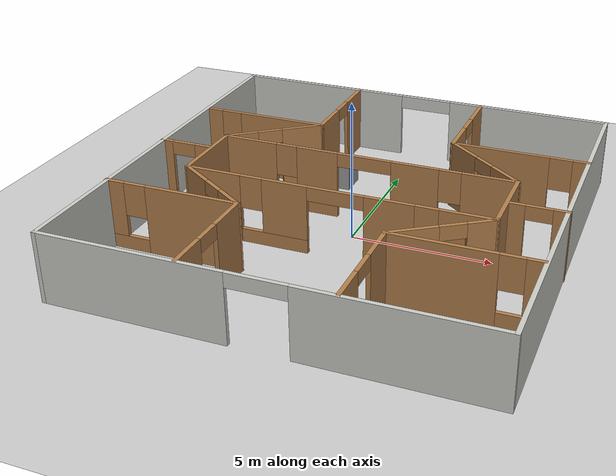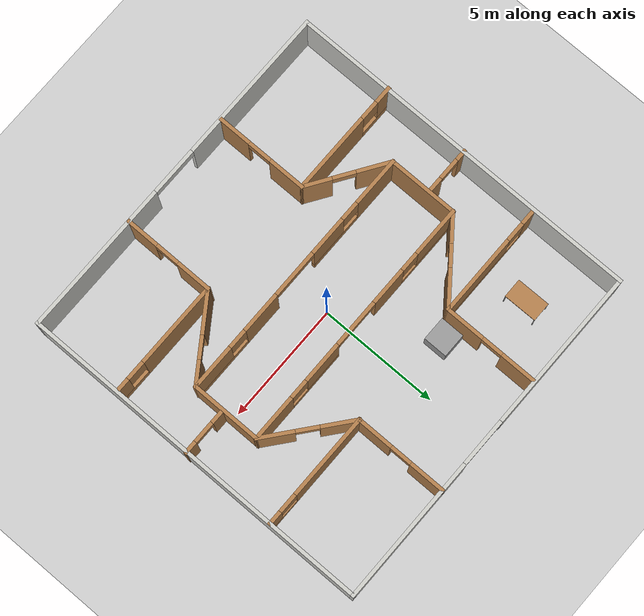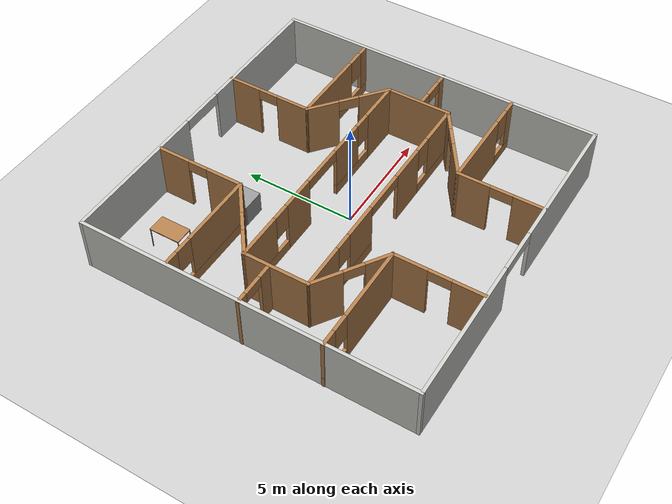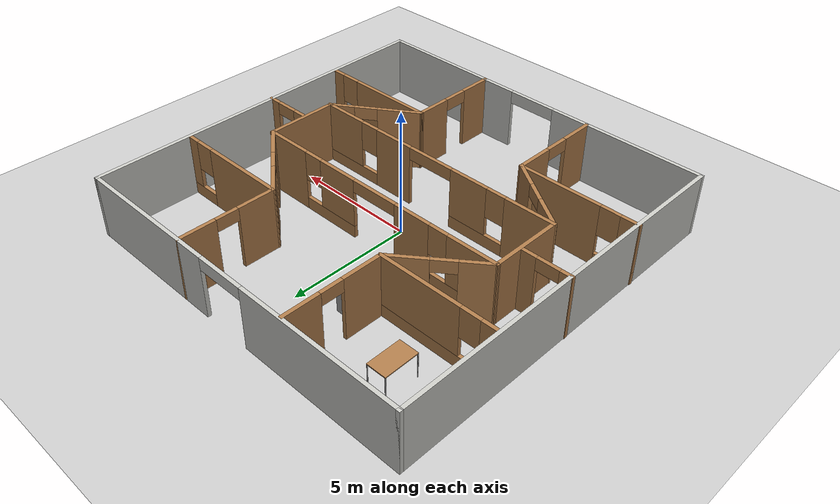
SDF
<sdf version="1.6">
 <world name="default">
  <model name="ground_plane">
   <static>1</static>
   <link name="link">
    <collision name="collision">
     <geometry><plane><normal>0 0 1</normal><size>100 100</size></plane></geometry>
     <surface><friction><ode><mu>100</mu><mu2>50</mu2></ode></friction></surface>
    </collision>
    <visual name="visual">
     <cast_shadows>0</cast_shadows>
     <geometry><plane><normal>0 0 1</normal><size>100 100</size></plane></geometry>
     <material>
      <script><uri>file://media/materials/scripts/gazebo.material</uri><name>Gazebo/Grey</name></script>
     </material>
    </visual>
   </link>
  </model>
  <model name="my_building">
   <pose>-0.03251 0.10057 0 0 -0 0</pose>
   <link name="Wall_106">
    <pose>-4.91785 3.41483 0 0 -0 0</pose>
    <visual name="Wall_106_Visual_0">
     <pose>-2.11085 0 1.25 0 -0 0</pose>
     <geometry><box><size>0.628291 0.15 2.5</size></box></geometry>
     <material>
      <script><uri>file://media/materials/scripts/gazebo.material</uri><name>Gazebo/Wood</name></script>
      <ambient>0.996078 0.47451 0.0196078 1</ambient>
     </material>
    </visual>
    <collision name="Wall_106_Collision_0">
     <geometry><box><size>0.628291 0.15 2.5</size></box></geometry>
     <pose>-2.11085 0 1.25 0 -0 0</pose>
    </collision>
    <visual name="Wall_106_Visual_1">
     <pose>0.314146 0 0.25 0 -0 0</pose>
     <geometry><box><size>4.22171 0.15 0.5</size></box></geometry>
     <material>
      <script><uri>file://media/materials/scripts/gazebo.material</uri><name>Gazebo/Wood</name></script>
      <ambient>0.996078 0.47451 0.0196078 1</ambient>
     </material>
    </visual>
    <collision name="Wall_106_Collision_1">
     <geometry><box><size>4.22171 0.15 0.5</size></box></geometry>
     <pose>0.314146 0 0.25 0 -0 0</pose>
    </collision>
    <visual name="Wall_106_Visual_2">
     <pose>0.714146 0 1.5 0 -0 0</pose>
     <geometry><box><size>3.42171 0.15 2</size></box></geometry>
     <material>
      <script><uri>file://media/materials/scripts/gazebo.material</uri><name>Gazebo/Wood</name></script>
      <ambient>0.996078 0.47451 0.0196078 1</ambient>
     </material>
    </visual>
    <collision name="Wall_106_Collision_2">
     <geometry><box><size>3.42171 0.15 2</size></box></geometry>
     <pose>0.714146 0 1.5 0 -0 0</pose>
    </collision>
    <visual name="Wall_106_Visual_3">
     <pose>-1.39671 0 1.9 0 -0 0</pose>
     <geometry><box><size>0.8 0.15 1.2</size></box></geometry>
     <material>
      <script><uri>file://media/materials/scripts/gazebo.material</uri><name>Gazebo/Wood</name></script>
      <ambient>0.996078 0.47451 0.0196078 1</ambient>
     </material>
    </visual>
    <collision name="Wall_106_Collision_3">
     <geometry><box><size>0.8 0.15 1.2</size></box></geometry>
     <pose>-1.39671 0 1.9 0 -0 0</pose>
    </collision>
   </link>
   <link name="Wall_110">
    <pose>-4.98829 -3.52523 0 0 -0 3.14159</pose>
    <visual name="Wall_110_Visual_0">
     <pose>-0.776842 0 1.25 0 -0 0</pose>
     <geometry><box><size>3.44632 0.15 2.5</size></box></geometry>
     <material>
      <script><uri>file://media/materials/scripts/gazebo.material</uri><name>Gazebo/Wood</name></script>
      <ambient>0.996078 0.47451 0.0196078 1</ambient>
     </material>
    </visual>
    <collision name="Wall_110_Collision_0">
     <geometry><box><size>3.44632 0.15 2.5</size></box></geometry>
     <pose>-0.776842 0 1.25 0 -0 0</pose>
    </collision>
    <visual name="Wall_110_Visual_1">
     <pose>1.72316 0 0.25 0 -0 0</pose>
     <geometry><box><size>1.55368 0.15 0.5</size></box></geometry>
     <material>
      <script><uri>file://media/materials/scripts/gazebo.material</uri><name>Gazebo/Wood</name></script>
      <ambient>0.996078 0.47451 0.0196078 1</ambient>
     </material>
    </visual>
    <collision name="Wall_110_Collision_1">
     <geometry><box><size>1.55368 0.15 0.5</size></box></geometry>
     <pose>1.72316 0 0.25 0 -0 0</pose>
    </collision>
    <visual name="Wall_110_Visual_2">
     <pose>2.12316 0 1.5 0 -0 0</pose>
     <geometry><box><size>0.753684 0.15 2</size></box></geometry>
     <material>
      <script><uri>file://media/materials/scripts/gazebo.material</uri><name>Gazebo/Wood</name></script>
      <ambient>0.996078 0.47451 0.0196078 1</ambient>
     </material>
    </visual>
    <collision name="Wall_110_Collision_2">
     <geometry><box><size>0.753684 0.15 2</size></box></geometry>
     <pose>2.12316 0 1.5 0 -0 0</pose>
    </collision>
    <visual name="Wall_110_Visual_3">
     <pose>1.34632 0 1.9 0 -0 0</pose>
     <geometry><box><size>0.8 0.15 1.2</size></box></geometry>
     <material>
      <script><uri>file://media/materials/scripts/gazebo.material</uri><name>Gazebo/Wood</name></script>
      <ambient>0.996078 0.47451 0.0196078 1</ambient>
     </material>
    </visual>
    <collision name="Wall_110_Collision_3">
     <geometry><box><size>0.8 0.15 1.2</size></box></geometry>
     <pose>1.34632 0 1.9 0 -0 0</pose>
    </collision>
   </link>
   <link name="Wall_112">
    <pose>4.89491 -3.63421 0 0 0 -1.6e-05</pose>
    <visual name="Wall_112_Visual_0">
     <pose>-0.698891 0 1.25 0 -0 0</pose>
     <geometry><box><size>3.60222 0.15 2.5</size></box></geometry>
     <material>
      <script><uri>file://media/materials/scripts/gazebo.material</uri><name>Gazebo/Wood</name></script>
      <ambient>0.996078 0.47451 0.0196078 1</ambient>
     </material>
    </visual>
    <collision name="Wall_112_Collision_0">
     <geometry><box><size>3.60222 0.15 2.5</size></box></geometry>
     <pose>-0.698891 0 1.25 0 -0 0</pose>
    </collision>
    <visual name="Wall_112_Visual_1">
     <pose>1.80111 0 0.25 0 -0 0</pose>
     <geometry><box><size>1.39778 0.15 0.5</size></box></geometry>
     <material>
      <script><uri>file://media/materials/scripts/gazebo.material</uri><name>Gazebo/Wood</name></script>
      <ambient>0.996078 0.47451 0.0196078 1</ambient>
     </material>
    </visual>
    <collision name="Wall_112_Collision_1">
     <geometry><box><size>1.39778 0.15 0.5</size></box></geometry>
     <pose>1.80111 0 0.25 0 -0 0</pose>
    </collision>
    <visual name="Wall_112_Visual_2">
     <pose>2.20111 0 1.5 0 -0 0</pose>
     <geometry><box><size>0.597783 0.15 2</size></box></geometry>
     <material>
      <script><uri>file://media/materials/scripts/gazebo.material</uri><name>Gazebo/Wood</name></script>
      <ambient>0.996078 0.47451 0.0196078 1</ambient>
     </material>
    </visual>
    <collision name="Wall_112_Collision_2">
     <geometry><box><size>0.597783 0.15 2</size></box></geometry>
     <pose>2.20111 0 1.5 0 -0 0</pose>
    </collision>
    <visual name="Wall_112_Visual_3">
     <pose>1.50222 0 1.9 0 -0 0</pose>
     <geometry><box><size>0.8 0.15 1.2</size></box></geometry>
     <material>
      <script><uri>file://media/materials/scripts/gazebo.material</uri><name>Gazebo/Wood</name></script>
      <ambient>0.996078 0.47451 0.0196078 1</ambient>
     </material>
    </visual>
    <collision name="Wall_112_Collision_3">
     <geometry><box><size>0.8 0.15 1.2</size></box></geometry>
     <pose>1.50222 0 1.9 0 -0 0</pose>
    </collision>
   </link>
   <link name="Wall_121">
    <pose>-6.47923 0.092939 0 0 -0 0</pose>
    <visual name="Wall_121_Visual_0">
     <pose>-0.75294 0 1.25 0 -0 0</pose>
     <geometry><box><size>0.494121 0.15 2.5</size></box></geometry>
     <material>
      <script><uri>file://media/materials/scripts/gazebo.material</uri><name>Gazebo/Wood</name></script>
      <ambient>1 1 0 1</ambient>
     </material>
    </visual>
    <collision name="Wall_121_Collision_0">
     <geometry><box><size>0.494121 0.15 2.5</size></box></geometry>
     <pose>-0.75294 0 1.25 0 -0 0</pose>
    </collision>
    <visual name="Wall_121_Visual_1">
     <pose>0.69706 0 1.25 0 -0 0</pose>
     <geometry><box><size>0.605879 0.15 2.5</size></box></geometry>
     <material>
      <script><uri>file://media/materials/scripts/gazebo.material</uri><name>Gazebo/Wood</name></script>
      <ambient>1 1 0 1</ambient>
     </material>
    </visual>
    <collision name="Wall_121_Collision_1">
     <geometry><box><size>0.605879 0.15 2.5</size></box></geometry>
     <pose>0.69706 0 1.25 0 -0 0</pose>
    </collision>
    <visual name="Wall_121_Visual_2">
     <pose>-0.055879 0 2.25 0 -0 0</pose>
     <geometry><box><size>0.9 0.15 0.5</size></box></geometry>
     <material>
      <script><uri>file://media/materials/scripts/gazebo.material</uri><name>Gazebo/Wood</name></script>
      <ambient>1 1 0 1</ambient>
     </material>
    </visual>
    <collision name="Wall_121_Collision_2">
     <geometry><box><size>0.9 0.15 0.5</size></box></geometry>
     <pose>-0.055879 0 2.25 0 -0 0</pose>
    </collision>
   </link>
   <link name="Wall_127">
    <pose>6.48829 -0.329162 0 0 -0 3.14159</pose>
    <visual name="Wall_127_Visual_0">
     <pose>-0.719515 0 1.25 0 -0 0</pose>
     <geometry><box><size>0.56097 0.15 2.5</size></box></geometry>
     <material>
      <script><uri>file://media/materials/scripts/gazebo.material</uri><name>Gazebo/Wood</name></script>
      <ambient>1 1 0 1</ambient>
     </material>
    </visual>
    <collision name="Wall_127_Collision_0">
     <geometry><box><size>0.56097 0.15 2.5</size></box></geometry>
     <pose>-0.719515 0 1.25 0 -0 0</pose>
    </collision>
    <visual name="Wall_127_Visual_1">
     <pose>0.730485 0 1.25 0 -0 0</pose>
     <geometry><box><size>0.53903 0.15 2.5</size></box></geometry>
     <material>
      <script><uri>file://media/materials/scripts/gazebo.material</uri><name>Gazebo/Wood</name></script>
      <ambient>1 1 0 1</ambient>
     </material>
    </visual>
    <collision name="Wall_127_Collision_1">
     <geometry><box><size>0.53903 0.15 2.5</size></box></geometry>
     <pose>0.730485 0 1.25 0 -0 0</pose>
    </collision>
    <visual name="Wall_127_Visual_2">
     <pose>0.01097 0 2.25 0 -0 0</pose>
     <geometry><box><size>0.9 0.15 0.5</size></box></geometry>
     <material>
      <script><uri>file://media/materials/scripts/gazebo.material</uri><name>Gazebo/Wood</name></script>
      <ambient>1 1 0 1</ambient>
     </material>
    </visual>
    <collision name="Wall_127_Collision_2">
     <geometry><box><size>0.9 0.15 0.5</size></box></geometry>
     <pose>0.01097 0 2.25 0 -0 0</pose>
    </collision>
   </link>
   <link name="Wall_131">
    <collision name="Wall_131_Collision">
     <geometry><box><size>3 0.15 2.5</size></box></geometry>
     <pose>0 0 1.25 0 -0 0</pose>
    </collision>
    <visual name="Wall_131_Visual">
     <pose>0 0 1.25 0 -0 0</pose>
     <geometry><box><size>3 0.15 2.5</size></box></geometry>
     <material>
      <script><uri>file://media/materials/scripts/gazebo.material</uri><name>Gazebo/Wood</name></script>
      <ambient>0.333333 1 0 1</ambient>
     </material>
    </visual>
    <pose>-5.42447 -0.198993 0 0 0 -1.5708</pose>
   </link>
   <link name="Wall_132">
    <pose>0.000529 -1.62399 0 0 -0 0</pose>
    <visual name="Wall_132_Visual_0">
     <pose>-4.45342 0 1.25 0 -0 0</pose>
     <geometry><box><size>2.09316 0.15 2.5</size></box></geometry>
     <material>
      <script><uri>file://media/materials/scripts/gazebo.material</uri><name>Gazebo/Wood</name></script>
      <ambient>0.333333 1 0 1</ambient>
     </material>
    </visual>
    <collision name="Wall_132_Collision_0">
     <geometry><box><size>2.09316 0.15 2.5</size></box></geometry>
     <pose>-4.45342 0 1.25 0 -0 0</pose>
    </collision>
    <visual name="Wall_132_Visual_1">
     <pose>1.90465 0 1.25 0 -0 0</pose>
     <geometry><box><size>1.7278 0.15 2.5</size></box></geometry>
     <material>
      <script><uri>file://media/materials/scripts/gazebo.material</uri><name>Gazebo/Wood</name></script>
      <ambient>0.333333 1 0 1</ambient>
     </material>
    </visual>
    <collision name="Wall_132_Collision_1">
     <geometry><box><size>1.7278 0.15 2.5</size></box></geometry>
     <pose>1.90465 0 1.25 0 -0 0</pose>
    </collision>
    <visual name="Wall_132_Visual_2">
     <pose>-2.18304 0 0.25 0 -0 0</pose>
     <geometry><box><size>2.4476 0.15 0.5</size></box></geometry>
     <material>
      <script><uri>file://media/materials/scripts/gazebo.material</uri><name>Gazebo/Wood</name></script>
      <ambient>0.333333 1 0 1</ambient>
     </material>
    </visual>
    <collision name="Wall_132_Collision_2">
     <geometry><box><size>2.4476 0.15 0.5</size></box></geometry>
     <pose>-2.18304 0 0.25 0 -0 0</pose>
    </collision>
    <visual name="Wall_132_Visual_3">
     <pose>4.13427 0 0.25 0 -0 0</pose>
     <geometry><box><size>2.73145 0.15 0.5</size></box></geometry>
     <material>
      <script><uri>file://media/materials/scripts/gazebo.material</uri><name>Gazebo/Wood</name></script>
      <ambient>0.333333 1 0 1</ambient>
     </material>
    </visual>
    <collision name="Wall_132_Collision_3">
     <geometry><box><size>2.73145 0.15 0.5</size></box></geometry>
     <pose>4.13427 0 0.25 0 -0 0</pose>
    </collision>
    <visual name="Wall_132_Visual_4">
     <pose>-1.78304 0 1.5 0 -0 0</pose>
     <geometry><box><size>1.6476 0.15 2</size></box></geometry>
     <material>
      <script><uri>file://media/materials/scripts/gazebo.material</uri><name>Gazebo/Wood</name></script>
      <ambient>0.333333 1 0 1</ambient>
     </material>
    </visual>
    <collision name="Wall_132_Collision_4">
     <geometry><box><size>1.6476 0.15 2</size></box></geometry>
     <pose>-1.78304 0 1.5 0 -0 0</pose>
    </collision>
    <visual name="Wall_132_Visual_5">
     <pose>-1.78304 0 1.5 0 -0 0</pose>
     <geometry><box><size>1.6476 0.15 2</size></box></geometry>
     <material>
      <script><uri>file://media/materials/scripts/gazebo.material</uri><name>Gazebo/Wood</name></script>
      <ambient>0.333333 1 0 1</ambient>
     </material>
    </visual>
    <collision name="Wall_132_Collision_5">
     <geometry><box><size>1.6476 0.15 2</size></box></geometry>
     <pose>-1.78304 0 1.5 0 -0 0</pose>
    </collision>
    <visual name="Wall_132_Visual_6">
     <pose>4.53428 0 1.5 0 -0 0</pose>
     <geometry><box><size>1.93145 0.15 2</size></box></geometry>
     <material>
      <script><uri>file://media/materials/scripts/gazebo.material</uri><name>Gazebo/Wood</name></script>
      <ambient>0.333333 1 0 1</ambient>
     </material>
    </visual>
    <collision name="Wall_132_Collision_6">
     <geometry><box><size>1.93145 0.15 2</size></box></geometry>
     <pose>4.53428 0 1.5 0 -0 0</pose>
    </collision>
    <visual name="Wall_132_Visual_7">
     <pose>-3.00684 0 1.9 0 -0 0</pose>
     <geometry><box><size>0.8 0.15 1.2</size></box></geometry>
     <material>
      <script><uri>file://media/materials/scripts/gazebo.material</uri><name>Gazebo/Wood</name></script>
      <ambient>0.333333 1 0 1</ambient>
     </material>
    </visual>
    <collision name="Wall_132_Collision_7">
     <geometry><box><size>0.8 0.15 1.2</size></box></geometry>
     <pose>-3.00684 0 1.9 0 -0 0</pose>
    </collision>
    <visual name="Wall_132_Visual_8">
     <pose>3.16855 0 1.9 0 -0 0</pose>
     <geometry><box><size>0.8 0.15 1.2</size></box></geometry>
     <material>
      <script><uri>file://media/materials/scripts/gazebo.material</uri><name>Gazebo/Wood</name></script>
      <ambient>0.333333 1 0 1</ambient>
     </material>
    </visual>
    <collision name="Wall_132_Collision_8">
     <geometry><box><size>0.8 0.15 1.2</size></box></geometry>
     <pose>3.16855 0 1.9 0 -0 0</pose>
    </collision>
    <visual name="Wall_132_Visual_9">
     <pose>0.040754 0 2.25 0 -0 0</pose>
     <geometry><box><size>2 0.15 0.5</size></box></geometry>
     <material>
      <script><uri>file://media/materials/scripts/gazebo.material</uri><name>Gazebo/Wood</name></script>
      <ambient>0.333333 1 0 1</ambient>
     </material>
    </visual>
    <collision name="Wall_132_Collision_9">
     <geometry><box><size>2 0.15 0.5</size></box></geometry>
     <pose>0.040754 0 2.25 0 -0 0</pose>
    </collision>
    <visual name="Wall_132_Visual_10">
     <pose>0.040754 0 2.25 0 -0 0</pose>
     <geometry><box><size>2 0.15 0.5</size></box></geometry>
     <material>
      <script><uri>file://media/materials/scripts/gazebo.material</uri><name>Gazebo/Wood</name></script>
      <ambient>0.333333 1 0 1</ambient>
     </material>
    </visual>
    <collision name="Wall_132_Collision_10">
     <geometry><box><size>2 0.15 0.5</size></box></geometry>
     <pose>0.040754 0 2.25 0 -0 0</pose>
    </collision>
   </link>
   <link name="Wall_133">
    <collision name="Wall_133_Collision">
     <geometry><box><size>3 0.15 2.5</size></box></geometry>
     <pose>0 0 1.25 0 -0 0</pose>
    </collision>
    <visual name="Wall_133_Visual">
     <pose>0 0 1.25 0 -0 0</pose>
     <geometry><box><size>3 0.15 2.5</size></box></geometry>
     <material>
      <script><uri>file://media/materials/scripts/gazebo.material</uri><name>Gazebo/Wood</name></script>
      <ambient>0.333333 1 0 1</ambient>
     </material>
    </visual>
    <pose>5.42553 -0.198993 0 0 -0 1.5708</pose>
   </link>
   <link name="Wall_134">
    <pose>0.000529 1.22601 0 0 -0 3.14159</pose>
    <visual name="Wall_134_Visual_0">
     <pose>-4.5042 0 1.25 0 -0 0</pose>
     <geometry><box><size>1.9916 0.15 2.5</size></box></geometry>
     <material>
      <script><uri>file://media/materials/scripts/gazebo.material</uri><name>Gazebo/Wood</name></script>
      <ambient>0.333333 1 0 1</ambient>
     </material>
    </visual>
    <collision name="Wall_134_Collision_0">
     <geometry><box><size>1.9916 0.15 2.5</size></box></geometry>
     <pose>-4.5042 0 1.25 0 -0 0</pose>
    </collision>
    <visual name="Wall_134_Visual_1">
     <pose>1.80309 0 1.25 0 -0 0</pose>
     <geometry><box><size>1.5674 0.15 2.5</size></box></geometry>
     <material>
      <script><uri>file://media/materials/scripts/gazebo.material</uri><name>Gazebo/Wood</name></script>
      <ambient>0.333333 1 0 1</ambient>
     </material>
    </visual>
    <collision name="Wall_134_Collision_1">
     <geometry><box><size>1.5674 0.15 2.5</size></box></geometry>
     <pose>1.80309 0 1.25 0 -0 0</pose>
    </collision>
    <visual name="Wall_134_Visual_2">
     <pose>-2.2445 0 0.25 0 -0 0</pose>
     <geometry><box><size>2.5278 0.15 0.5</size></box></geometry>
     <material>
      <script><uri>file://media/materials/scripts/gazebo.material</uri><name>Gazebo/Wood</name></script>
      <ambient>0.333333 1 0 1</ambient>
     </material>
    </visual>
    <collision name="Wall_134_Collision_2">
     <geometry><box><size>2.5278 0.15 0.5</size></box></geometry>
     <pose>-2.2445 0 0.25 0 -0 0</pose>
    </collision>
    <visual name="Wall_134_Visual_3">
     <pose>4.0434 0 0.25 0 -0 0</pose>
     <geometry><box><size>2.91321 0.15 0.5</size></box></geometry>
     <material>
      <script><uri>file://media/materials/scripts/gazebo.material</uri><name>Gazebo/Wood</name></script>
      <ambient>0.333333 1 0 1</ambient>
     </material>
    </visual>
    <collision name="Wall_134_Collision_3">
     <geometry><box><size>2.91321 0.15 0.5</size></box></geometry>
     <pose>4.0434 0 0.25 0 -0 0</pose>
    </collision>
    <visual name="Wall_134_Visual_4">
     <pose>-1.8445 0 1.5 0 -0 0</pose>
     <geometry><box><size>1.7278 0.15 2</size></box></geometry>
     <material>
      <script><uri>file://media/materials/scripts/gazebo.material</uri><name>Gazebo/Wood</name></script>
      <ambient>0.333333 1 0 1</ambient>
     </material>
    </visual>
    <collision name="Wall_134_Collision_4">
     <geometry><box><size>1.7278 0.15 2</size></box></geometry>
     <pose>-1.8445 0 1.5 0 -0 0</pose>
    </collision>
    <visual name="Wall_134_Visual_5">
     <pose>-1.8445 0 1.5 0 -0 0</pose>
     <geometry><box><size>1.7278 0.15 2</size></box></geometry>
     <material>
      <script><uri>file://media/materials/scripts/gazebo.material</uri><name>Gazebo/Wood</name></script>
      <ambient>0.333333 1 0 1</ambient>
     </material>
    </visual>
    <collision name="Wall_134_Collision_5">
     <geometry><box><size>1.7278 0.15 2</size></box></geometry>
     <pose>-1.8445 0 1.5 0 -0 0</pose>
    </collision>
    <visual name="Wall_134_Visual_6">
     <pose>4.4434 0 1.5 0 -0 0</pose>
     <geometry><box><size>2.11321 0.15 2</size></box></geometry>
     <material>
      <script><uri>file://media/materials/scripts/gazebo.material</uri><name>Gazebo/Wood</name></script>
      <ambient>0.333333 1 0 1</ambient>
     </material>
    </visual>
    <collision name="Wall_134_Collision_6">
     <geometry><box><size>2.11321 0.15 2</size></box></geometry>
     <pose>4.4434 0 1.5 0 -0 0</pose>
    </collision>
    <visual name="Wall_134_Visual_7">
     <pose>-3.1084 0 1.9 0 -0 0</pose>
     <geometry><box><size>0.8 0.15 1.2</size></box></geometry>
     <material>
      <script><uri>file://media/materials/scripts/gazebo.material</uri><name>Gazebo/Wood</name></script>
      <ambient>0.333333 1 0 1</ambient>
     </material>
    </visual>
    <collision name="Wall_134_Collision_7">
     <geometry><box><size>0.8 0.15 1.2</size></box></geometry>
     <pose>-3.1084 0 1.9 0 -0 0</pose>
    </collision>
    <visual name="Wall_134_Visual_8">
     <pose>2.98679 0 1.9 0 -0 0</pose>
     <geometry><box><size>0.8 0.15 1.2</size></box></geometry>
     <material>
      <script><uri>file://media/materials/scripts/gazebo.material</uri><name>Gazebo/Wood</name></script>
      <ambient>0.333333 1 0 1</ambient>
     </material>
    </visual>
    <collision name="Wall_134_Collision_8">
     <geometry><box><size>0.8 0.15 1.2</size></box></geometry>
     <pose>2.98679 0 1.9 0 -0 0</pose>
    </collision>
    <visual name="Wall_134_Visual_9">
     <pose>0.019396 0 2.25 0 -0 0</pose>
     <geometry><box><size>2 0.15 0.5</size></box></geometry>
     <material>
      <script><uri>file://media/materials/scripts/gazebo.material</uri><name>Gazebo/Wood</name></script>
      <ambient>0.333333 1 0 1</ambient>
     </material>
    </visual>
    <collision name="Wall_134_Collision_9">
     <geometry><box><size>2 0.15 0.5</size></box></geometry>
     <pose>0.019396 0 2.25 0 -0 0</pose>
    </collision>
    <visual name="Wall_134_Visual_10">
     <pose>0.019396 0 2.25 0 -0 0</pose>
     <geometry><box><size>2 0.15 0.5</size></box></geometry>
     <material>
      <script><uri>file://media/materials/scripts/gazebo.material</uri><name>Gazebo/Wood</name></script>
      <ambient>0.333333 1 0 1</ambient>
     </material>
    </visual>
    <collision name="Wall_134_Collision_10">
     <geometry><box><size>2 0.15 0.5</size></box></geometry>
     <pose>0.019396 0 2.25 0 -0 0</pose>
    </collision>
   </link>
   <link name="Wall_156">
    <pose>2.53674 5.5 0 0 0 -1.5708</pose>
    <visual name="Wall_156_Visual_0">
     <pose>-1.23347 0 1.25 0 -0 0</pose>
     <geometry><box><size>1.53306 0.15 2.5</size></box></geometry>
     <material>
      <script><uri>file://media/materials/scripts/gazebo.material</uri><name>Gazebo/Wood</name></script>
      <ambient>0.996078 0.47451 0.0196078 1</ambient>
     </material>
    </visual>
    <collision name="Wall_156_Collision_0">
     <geometry><box><size>1.53306 0.15 2.5</size></box></geometry>
     <pose>-1.23347 0 1.25 0 -0 0</pose>
    </collision>
    <visual name="Wall_156_Visual_1">
     <pose>1.21653 0 1.25 0 -0 0</pose>
     <geometry><box><size>1.56693 0.15 2.5</size></box></geometry>
     <material>
      <script><uri>file://media/materials/scripts/gazebo.material</uri><name>Gazebo/Wood</name></script>
      <ambient>0.996078 0.47451 0.0196078 1</ambient>
     </material>
    </visual>
    <collision name="Wall_156_Collision_1">
     <geometry><box><size>1.56693 0.15 2.5</size></box></geometry>
     <pose>1.21653 0 1.25 0 -0 0</pose>
    </collision>
    <visual name="Wall_156_Visual_2">
     <pose>-0.016935 0 2.25 0 -0 0</pose>
     <geometry><box><size>0.9 0.15 0.5</size></box></geometry>
     <material>
      <script><uri>file://media/materials/scripts/gazebo.material</uri><name>Gazebo/Wood</name></script>
      <ambient>0.996078 0.47451 0.0196078 1</ambient>
     </material>
    </visual>
    <collision name="Wall_156_Collision_2">
     <geometry><box><size>0.9 0.15 0.5</size></box></geometry>
     <pose>-0.016935 0 2.25 0 -0 0</pose>
    </collision>
   </link>
   <link name="Wall_157">
    <pose>4.96174 3.575 0 0 -0 0</pose>
    <visual name="Wall_157_Visual_0">
     <pose>-0.71226 0 1.25 0 -0 0</pose>
     <geometry><box><size>3.57548 0.15 2.5</size></box></geometry>
     <material>
      <script><uri>file://media/materials/scripts/gazebo.material</uri><name>Gazebo/Wood</name></script>
      <ambient>0.996078 0.47451 0.0196078 1</ambient>
     </material>
    </visual>
    <collision name="Wall_157_Collision_0">
     <geometry><box><size>3.57548 0.15 2.5</size></box></geometry>
     <pose>-0.71226 0 1.25 0 -0 0</pose>
    </collision>
    <visual name="Wall_157_Visual_1">
     <pose>1.78774 0 0.25 0 -0 0</pose>
     <geometry><box><size>1.42452 0.15 0.5</size></box></geometry>
     <material>
      <script><uri>file://media/materials/scripts/gazebo.material</uri><name>Gazebo/Wood</name></script>
      <ambient>0.996078 0.47451 0.0196078 1</ambient>
     </material>
    </visual>
    <collision name="Wall_157_Collision_1">
     <geometry><box><size>1.42452 0.15 0.5</size></box></geometry>
     <pose>1.78774 0 0.25 0 -0 0</pose>
    </collision>
    <visual name="Wall_157_Visual_2">
     <pose>2.18774 0 1.5 0 -0 0</pose>
     <geometry><box><size>0.624521 0.15 2</size></box></geometry>
     <material>
      <script><uri>file://media/materials/scripts/gazebo.material</uri><name>Gazebo/Wood</name></script>
      <ambient>0.996078 0.47451 0.0196078 1</ambient>
     </material>
    </visual>
    <collision name="Wall_157_Collision_2">
     <geometry><box><size>0.624521 0.15 2</size></box></geometry>
     <pose>2.18774 0 1.5 0 -0 0</pose>
    </collision>
    <visual name="Wall_157_Visual_3">
     <pose>1.47548 0 1.9 0 -0 0</pose>
     <geometry><box><size>0.8 0.15 1.2</size></box></geometry>
     <material>
      <script><uri>file://media/materials/scripts/gazebo.material</uri><name>Gazebo/Wood</name></script>
      <ambient>0.996078 0.47451 0.0196078 1</ambient>
     </material>
    </visual>
    <collision name="Wall_157_Collision_3">
     <geometry><box><size>0.8 0.15 1.2</size></box></geometry>
     <pose>1.47548 0 1.9 0 -0 0</pose>
    </collision>
   </link>
   <link name="Wall_163">
    <pose>-3.99616 2.32042 0 0 0 -2.48779</pose>
    <visual name="Wall_163_Visual_0">
     <pose>-1.07493 0 1.25 0 -0 0</pose>
     <geometry><box><size>1.59891 0.15 2.5</size></box></geometry>
     <material>
      <script><uri>file://media/materials/scripts/gazebo.material</uri><name>Gazebo/Wood</name></script>
      <ambient>0 0.666667 1 1</ambient>
     </material>
    </visual>
    <collision name="Wall_163_Collision_0">
     <geometry><box><size>1.59891 0.15 2.5</size></box></geometry>
     <pose>-1.07493 0 1.25 0 -0 0</pose>
    </collision>
    <visual name="Wall_163_Visual_1">
     <pose>1.24946 0 1.25 0 -0 0</pose>
     <geometry><box><size>1.24987 0.15 2.5</size></box></geometry>
     <material>
      <script><uri>file://media/materials/scripts/gazebo.material</uri><name>Gazebo/Wood</name></script>
      <ambient>0 0.666667 1 1</ambient>
     </material>
    </visual>
    <collision name="Wall_163_Collision_1">
     <geometry><box><size>1.24987 0.15 2.5</size></box></geometry>
     <pose>1.24946 0 1.25 0 -0 0</pose>
    </collision>
    <visual name="Wall_163_Visual_2">
     <pose>0.174522 0 2.25 0 -0 0</pose>
     <geometry><box><size>0.9 0.15 0.5</size></box></geometry>
     <material>
      <script><uri>file://media/materials/scripts/gazebo.material</uri><name>Gazebo/Wood</name></script>
      <ambient>0 0.666667 1 1</ambient>
     </material>
    </visual>
    <collision name="Wall_163_Collision_2">
     <geometry><box><size>0.9 0.15 0.5</size></box></geometry>
     <pose>0.174522 0 2.25 0 -0 0</pose>
    </collision>
   </link>
   <link name="Wall_165">
    <pose>3.98114 2.4005 0 0 0 -0.682704</pose>
    <visual name="Wall_165_Visual_0">
     <pose>-1.18979 0 1.25 0 -0 0</pose>
     <geometry><box><size>1.49371 0.15 2.5</size></box></geometry>
     <material>
      <script><uri>file://media/materials/scripts/gazebo.material</uri><name>Gazebo/Wood</name></script>
      <ambient>0 0.666667 1 1</ambient>
     </material>
    </visual>
    <collision name="Wall_165_Collision_0">
     <geometry><box><size>1.49371 0.15 2.5</size></box></geometry>
     <pose>-1.18979 0 1.25 0 -0 0</pose>
    </collision>
    <visual name="Wall_165_Visual_1">
     <pose>1.19685 0 1.25 0 -0 0</pose>
     <geometry><box><size>1.47958 0.15 2.5</size></box></geometry>
     <material>
      <script><uri>file://media/materials/scripts/gazebo.material</uri><name>Gazebo/Wood</name></script>
      <ambient>0 0.666667 1 1</ambient>
     </material>
    </visual>
    <collision name="Wall_165_Collision_1">
     <geometry><box><size>1.47958 0.15 2.5</size></box></geometry>
     <pose>1.19685 0 1.25 0 -0 0</pose>
    </collision>
    <visual name="Wall_165_Visual_2">
     <pose>0.007063 0 2.25 0 -0 0</pose>
     <geometry><box><size>0.9 0.15 0.5</size></box></geometry>
     <material>
      <script><uri>file://media/materials/scripts/gazebo.material</uri><name>Gazebo/Wood</name></script>
      <ambient>0 0.666667 1 1</ambient>
     </material>
    </visual>
    <collision name="Wall_165_Collision_2">
     <geometry><box><size>0.9 0.15 0.5</size></box></geometry>
     <pose>0.007063 0 2.25 0 -0 0</pose>
    </collision>
   </link>
   <link name="Wall_171">
    <pose>2.47015 -5.52017 0 0 0 -1.5708</pose>
    <visual name="Wall_171_Visual_0">
     <pose>-1.20523 0 1.25 0 -0 0</pose>
     <geometry><box><size>1.51153 0.15 2.5</size></box></geometry>
     <material>
      <script><uri>file://media/materials/scripts/gazebo.material</uri><name>Gazebo/Wood</name></script>
      <ambient>0.996078 0.47451 0.0196078 1</ambient>
     </material>
    </visual>
    <collision name="Wall_171_Collision_0">
     <geometry><box><size>1.51153 0.15 2.5</size></box></geometry>
     <pose>-1.20523 0 1.25 0 -0 0</pose>
    </collision>
    <visual name="Wall_171_Visual_1">
     <pose>1.25577 0 1.25 0 -0 0</pose>
     <geometry><box><size>1.41047 0.15 2.5</size></box></geometry>
     <material>
      <script><uri>file://media/materials/scripts/gazebo.material</uri><name>Gazebo/Wood</name></script>
      <ambient>0.996078 0.47451 0.0196078 1</ambient>
     </material>
    </visual>
    <collision name="Wall_171_Collision_1">
     <geometry><box><size>1.41047 0.15 2.5</size></box></geometry>
     <pose>1.25577 0 1.25 0 -0 0</pose>
    </collision>
    <visual name="Wall_171_Visual_2">
     <pose>0.050533 0 2.25 0 -0 0</pose>
     <geometry><box><size>1 0.15 0.5</size></box></geometry>
     <material>
      <script><uri>file://media/materials/scripts/gazebo.material</uri><name>Gazebo/Wood</name></script>
      <ambient>0.996078 0.47451 0.0196078 1</ambient>
     </material>
    </visual>
    <collision name="Wall_171_Collision_2">
     <geometry><box><size>1 0.15 0.5</size></box></geometry>
     <pose>0.050533 0 2.25 0 -0 0</pose>
    </collision>
   </link>
   <link name="Wall_173">
    <pose>3.94784 -2.62908 0 0 -0 0.597296</pose>
    <visual name="Wall_173_Visual_0">
     <pose>-0.97573 0 1.25 0 -0 0</pose>
     <geometry><box><size>1.77276 0.15 2.5</size></box></geometry>
     <material>
      <script><uri>file://media/materials/scripts/gazebo.material</uri><name>Gazebo/Wood</name></script>
      <ambient>0.435294 0.796078 0.67451 1</ambient>
     </material>
    </visual>
    <collision name="Wall_173_Collision_0">
     <geometry><box><size>1.77276 0.15 2.5</size></box></geometry>
     <pose>-0.97573 0 1.25 0 -0 0</pose>
    </collision>
    <visual name="Wall_173_Visual_1">
     <pose>1.33638 0 1.25 0 -0 0</pose>
     <geometry><box><size>1.05146 0.15 2.5</size></box></geometry>
     <material>
      <script><uri>file://media/materials/scripts/gazebo.material</uri><name>Gazebo/Wood</name></script>
      <ambient>0.435294 0.796078 0.67451 1</ambient>
     </material>
    </visual>
    <collision name="Wall_173_Collision_1">
     <geometry><box><size>1.05146 0.15 2.5</size></box></geometry>
     <pose>1.33638 0 1.25 0 -0 0</pose>
    </collision>
    <visual name="Wall_173_Visual_2">
     <pose>0.360652 0 2.25 0 -0 0</pose>
     <geometry><box><size>0.9 0.15 0.5</size></box></geometry>
     <material>
      <script><uri>file://media/materials/scripts/gazebo.material</uri><name>Gazebo/Wood</name></script>
      <ambient>0.435294 0.796078 0.67451 1</ambient>
     </material>
    </visual>
    <collision name="Wall_173_Collision_2">
     <geometry><box><size>0.9 0.15 0.5</size></box></geometry>
     <pose>0.360652 0 2.25 0 -0 0</pose>
    </collision>
   </link>
   <link name="Wall_175">
    <pose>-3.99388 -2.57461 0 0 0 -0.586498</pose>
    <visual name="Wall_175_Visual_0">
     <pose>-1.0612 0 1.25 0 -0 0</pose>
     <geometry><box><size>1.46286 0.15 2.5</size></box></geometry>
     <material>
      <script><uri>file://media/materials/scripts/gazebo.material</uri><name>Gazebo/Wood</name></script>
      <ambient>0.435294 0.796078 0.67451 1</ambient>
     </material>
    </visual>
    <collision name="Wall_175_Collision_0">
     <geometry><box><size>1.46286 0.15 2.5</size></box></geometry>
     <pose>-1.0612 0 1.25 0 -0 0</pose>
    </collision>
    <visual name="Wall_175_Visual_1">
     <pose>1.18143 0 1.25 0 -0 0</pose>
     <geometry><box><size>1.2224 0.15 2.5</size></box></geometry>
     <material>
      <script><uri>file://media/materials/scripts/gazebo.material</uri><name>Gazebo/Wood</name></script>
      <ambient>0.435294 0.796078 0.67451 1</ambient>
     </material>
    </visual>
    <collision name="Wall_175_Collision_1">
     <geometry><box><size>1.2224 0.15 2.5</size></box></geometry>
     <pose>1.18143 0 1.25 0 -0 0</pose>
    </collision>
    <visual name="Wall_175_Visual_2">
     <pose>0.120231 0 2.25 0 -0 0</pose>
     <geometry><box><size>0.9 0.15 0.5</size></box></geometry>
     <material>
      <script><uri>file://media/materials/scripts/gazebo.material</uri><name>Gazebo/Wood</name></script>
      <ambient>0.435294 0.796078 0.67451 1</ambient>
     </material>
    </visual>
    <collision name="Wall_175_Collision_2">
     <geometry><box><size>0.9 0.15 0.5</size></box></geometry>
     <pose>0.120231 0 2.25 0 -0 0</pose>
    </collision>
   </link>
   <link name="Wall_64">
    <pose>0.001972 7.425 0 0 -0 0</pose>
    <visual name="Wall_64_Visual_0">
     <pose>-4.07996 0 1.25 0 -0 0</pose>
     <geometry><box><size>6.75984 0.15 2.5</size></box></geometry>
     <material>
      <script><uri>file://media/materials/scripts/gazebo.material</uri><name>Gazebo/CeilingTiled</name></script>
      <ambient>1 0 0 1</ambient>
     </material>
    </visual>
    <collision name="Wall_64_Collision_0">
     <geometry><box><size>6.75984 0.15 2.5</size></box></geometry>
     <pose>-4.07996 0 1.25 0 -0 0</pose>
    </collision>
    <visual name="Wall_64_Visual_1">
     <pose>4.37992 0 1.25 0 -0 0</pose>
     <geometry><box><size>6.15992 0.15 2.5</size></box></geometry>
     <material>
      <script><uri>file://media/materials/scripts/gazebo.material</uri><name>Gazebo/CeilingTiled</name></script>
      <ambient>1 0 0 1</ambient>
     </material>
    </visual>
    <collision name="Wall_64_Collision_1">
     <geometry><box><size>6.15992 0.15 2.5</size></box></geometry>
     <pose>4.37992 0 1.25 0 -0 0</pose>
    </collision>
    <visual name="Wall_64_Visual_2">
     <pose>0.29996 0 2.25 0 -0 0</pose>
     <geometry><box><size>2 0.15 0.5</size></box></geometry>
     <material>
      <script><uri>file://media/materials/scripts/gazebo.material</uri><name>Gazebo/CeilingTiled</name></script>
      <ambient>1 0 0 1</ambient>
     </material>
    </visual>
    <collision name="Wall_64_Collision_2">
     <geometry><box><size>2 0.15 0.5</size></box></geometry>
     <pose>0.29996 0 2.25 0 -0 0</pose>
    </collision>
   </link>
   <link name="Wall_66">
    <collision name="Wall_66_Collision">
     <geometry><box><size>15 0.15 2.5</size></box></geometry>
     <pose>0 0 1.25 0 -0 0</pose>
    </collision>
    <visual name="Wall_66_Visual">
     <pose>0 0 1.25 0 -0 0</pose>
     <geometry><box><size>15 0.15 2.5</size></box></geometry>
     <material>
      <script><uri>file://media/materials/scripts/gazebo.material</uri><name>Gazebo/CeilingTiled</name></script>
      <ambient>1 0 0 1</ambient>
     </material>
    </visual>
    <pose>7.38675 0 0 0 0 -1.5708</pose>
   </link>
   <link name="Wall_67">
    <pose>0.001972 -7.425 0 0 -0 3.14159</pose>
    <visual name="Wall_67_Visual_0">
     <pose>-4.23957 0 1.25 0 -0 0</pose>
     <geometry><box><size>6.44062 0.15 2.5</size></box></geometry>
     <material>
      <script><uri>file://media/materials/scripts/gazebo.material</uri><name>Gazebo/CeilingTiled</name></script>
      <ambient>1 0 0 1</ambient>
     </material>
    </visual>
    <collision name="Wall_67_Collision_0">
     <geometry><box><size>6.44062 0.15 2.5</size></box></geometry>
     <pose>-4.23957 0 1.25 0 -0 0</pose>
    </collision>
    <visual name="Wall_67_Visual_1">
     <pose>4.22031 0 1.25 0 -0 0</pose>
     <geometry><box><size>6.47914 0.15 2.5</size></box></geometry>
     <material>
      <script><uri>file://media/materials/scripts/gazebo.material</uri><name>Gazebo/CeilingTiled</name></script>
      <ambient>1 0 0 1</ambient>
     </material>
    </visual>
    <collision name="Wall_67_Collision_1">
     <geometry><box><size>6.47914 0.15 2.5</size></box></geometry>
     <pose>4.22031 0 1.25 0 -0 0</pose>
    </collision>
    <visual name="Wall_67_Visual_2">
     <pose>-0.01926 0 2.25 0 -0 0</pose>
     <geometry><box><size>2 0.15 0.5</size></box></geometry>
     <material>
      <script><uri>file://media/materials/scripts/gazebo.material</uri><name>Gazebo/CeilingTiled</name></script>
      <ambient>1 0 0 1</ambient>
     </material>
    </visual>
    <collision name="Wall_67_Collision_2">
     <geometry><box><size>2 0.15 0.5</size></box></geometry>
     <pose>-0.01926 0 2.25 0 -0 0</pose>
    </collision>
   </link>
   <link name="Wall_69">
    <collision name="Wall_69_Collision">
     <geometry><box><size>15 0.15 2.5</size></box></geometry>
     <pose>0 0 1.25 0 -0 0</pose>
    </collision>
    <visual name="Wall_69_Visual">
     <pose>0 0 1.25 0 -0 0</pose>
     <geometry><box><size>15 0.15 2.5</size></box></geometry>
     <material>
      <script><uri>file://media/materials/scripts/gazebo.material</uri><name>Gazebo/CeilingTiled</name></script>
      <ambient>1 0 0 1</ambient>
     </material>
    </visual>
    <pose>-7.3828 0 0 0 0 -1.5708</pose>
   </link>
   <link name="Wall_76">
    <pose>-2.56329 5.42776 0 0 -0 1.5708</pose>
    <visual name="Wall_76_Visual_0">
     <pose>-1.20046 0 1.25 0 -0 0</pose>
     <geometry><box><size>1.59907 0.15 2.5</size></box></geometry>
     <material>
      <script><uri>file://media/materials/scripts/gazebo.material</uri><name>Gazebo/Wood</name></script>
      <ambient>0.996078 0.47451 0.0196078 1</ambient>
     </material>
    </visual>
    <collision name="Wall_76_Collision_0">
     <geometry><box><size>1.59907 0.15 2.5</size></box></geometry>
     <pose>-1.20046 0 1.25 0 -0 0</pose>
    </collision>
    <visual name="Wall_76_Visual_1">
     <pose>1.24954 0 1.25 0 -0 0</pose>
     <geometry><box><size>1.50093 0.15 2.5</size></box></geometry>
     <material>
      <script><uri>file://media/materials/scripts/gazebo.material</uri><name>Gazebo/Wood</name></script>
      <ambient>0.996078 0.47451 0.0196078 1</ambient>
     </material>
    </visual>
    <collision name="Wall_76_Collision_1">
     <geometry><box><size>1.50093 0.15 2.5</size></box></geometry>
     <pose>1.24954 0 1.25 0 -0 0</pose>
    </collision>
    <visual name="Wall_76_Visual_2">
     <pose>0.04907 0 2.25 0 -0 0</pose>
     <geometry><box><size>0.9 0.15 0.5</size></box></geometry>
     <material>
      <script><uri>file://media/materials/scripts/gazebo.material</uri><name>Gazebo/Wood</name></script>
      <ambient>0.996078 0.47451 0.0196078 1</ambient>
     </material>
    </visual>
    <collision name="Wall_76_Collision_2">
     <geometry><box><size>0.9 0.15 0.5</size></box></geometry>
     <pose>0.04907 0 2.25 0 -0 0</pose>
    </collision>
   </link>
   <link name="Wall_86">
    <pose>-2.56329 -5.45023 0 0 0 -1.5708</pose>
    <visual name="Wall_86_Visual_0">
     <pose>-1.20982 0 1.25 0 -0 0</pose>
     <geometry><box><size>1.58037 0.15 2.5</size></box></geometry>
     <material>
      <script><uri>file://media/materials/scripts/gazebo.material</uri><name>Gazebo/Wood</name></script>
      <ambient>0.996078 0.47451 0.0196078 1</ambient>
     </material>
    </visual>
    <collision name="Wall_86_Collision_0">
     <geometry><box><size>1.58037 0.15 2.5</size></box></geometry>
     <pose>-1.20982 0 1.25 0 -0 0</pose>
    </collision>
    <visual name="Wall_86_Visual_1">
     <pose>1.29018 0 1.25 0 -0 0</pose>
     <geometry><box><size>1.41963 0.15 2.5</size></box></geometry>
     <material>
      <script><uri>file://media/materials/scripts/gazebo.material</uri><name>Gazebo/Wood</name></script>
      <ambient>0.996078 0.47451 0.0196078 1</ambient>
     </material>
    </visual>
    <collision name="Wall_86_Collision_1">
     <geometry><box><size>1.41963 0.15 2.5</size></box></geometry>
     <pose>1.29018 0 1.25 0 -0 0</pose>
    </collision>
    <visual name="Wall_86_Visual_2">
     <pose>0.080368 0 2.25 0 -0 0</pose>
     <geometry><box><size>1 0.15 0.5</size></box></geometry>
     <material>
      <script><uri>file://media/materials/scripts/gazebo.material</uri><name>Gazebo/Wood</name></script>
      <ambient>0.996078 0.47451 0.0196078 1</ambient>
     </material>
    </visual>
    <collision name="Wall_86_Collision_2">
     <geometry><box><size>1 0.15 0.5</size></box></geometry>
     <pose>0.080368 0 2.25 0 -0 0</pose>
    </collision>
   </link>
   <static>1</static>
  </model>
  <model name="table_clone_1">
   <static>0</static>
   <link name="link">
    <collision name="surface">
     <pose>0 0 1 0 -0 0</pose>
     <geometry><box><size>1.5 0.8 0.03</size></box></geometry>
     <surface><friction><ode><mu>0.6</mu><mu2>0.6</mu2></ode></friction></surface>
    </collision>
    <visual name="visual1">
     <pose>0 0 1 0 -0 0</pose>
     <geometry><box><size>1.4 0.8 0.04</size></box></geometry>
     <material>
      <script><uri>file://media/materials/scripts/gazebo.material</uri><name>Gazebo/Wood</name></script>
     </material>
    </visual>
    <collision name="front_left_leg">
     <pose>0.68 0.38 0.5 0 -0 0</pose>
     <geometry><cylinder><radius>0.02</radius><length>1</length></cylinder></geometry>
    </collision>
    <visual name="front_left_leg">
     <pose>0.68 0.38 0.5 0 -0 0</pose>
     <geometry><cylinder><radius>0.02</radius><length>1</length></cylinder></geometry>
     <material>
      <script><uri>file://media/materials/scripts/gazebo.material</uri><name>Gazebo/Grey</name></script>
     </material>
    </visual>
    <collision name="front_right_leg">
     <pose>0.68 -0.38 0.5 0 -0 0</pose>
     <geometry><cylinder><radius>0.02</radius><length>1</length></cylinder></geometry>
    </collision>
    <visual name="front_right_leg">
     <pose>0.68 -0.38 0.5 0 -0 0</pose>
     <geometry><cylinder><radius>0.02</radius><length>1</length></cylinder></geometry>
     <material>
      <script><uri>file://media/materials/scripts/gazebo.material</uri><name>Gazebo/Grey</name></script>
     </material>
    </visual>
    <collision name="back_right_leg">
     <pose>-0.68 -0.38 0.5 0 -0 0</pose>
     <geometry><cylinder><radius>0.02</radius><length>1</length></cylinder></geometry>
    </collision>
    <visual name="back_right_leg">
     <pose>-0.68 -0.38 0.5 0 -0 0</pose>
     <geometry><cylinder><radius>0.02</radius><length>1</length></cylinder></geometry>
     <material>
      <script><uri>file://media/materials/scripts/gazebo.material</uri><name>Gazebo/Grey</name></script>
     </material>
    </visual>
    <collision name="back_left_leg">
     <pose>-0.68 0.38 0.5 0 -0 0</pose>
     <geometry><cylinder><radius>0.02</radius><length>1</length></cylinder></geometry>
    </collision>
    <visual name="back_left_leg">
     <pose>-0.68 0.38 0.5 0 -0 0</pose>
     <geometry><cylinder><radius>0.02</radius><length>1</length></cylinder></geometry>
     <material>
      <script><uri>file://media/materials/scripts/gazebo.material</uri><name>Gazebo/Grey</name></script>
     </material>
    </visual>
    <inertial>
     <inertia><ixx>1</ixx><ixy>0</ixy><ixz>0</ixz><iyy>1</iyy><iyz>0</iyz><izz>1</izz></inertia>
     <mass>1</mass>
    </inertial>
   </link>
   <pose>-4.9795 5.36446 -1e-06 0 -1e-06 1.57643</pose>
  </model>
  <model name="unit_box_0_1">
   <pose>-1.96013 3.94229 0.499995 0 -1e-05 0</pose>
   <link name="link">
    <inertial>
     <mass>1</mass>
     <inertia>
      <ixx>0.166667</ixx>
      <ixy>0</ixy>
      <ixz>0</ixz>
      <iyy>0.166667</iyy>
      <iyz>0</iyz>
      <izz>0.166667</izz>
     </inertia>
    </inertial>
    <collision name="collision"><geometry><box><size>1 1 1</size></box></geometry></collision>
    <visual name="visual">
     <geometry><box><size>1 1 1</size></box></geometry>
     <material>
      <script><name>Gazebo/Grey</name><uri>file://media/materials/scripts/gazebo.material</uri></script>
     </material>
    </visual>
   </link>
  </model>
 </world>
</sdf>
